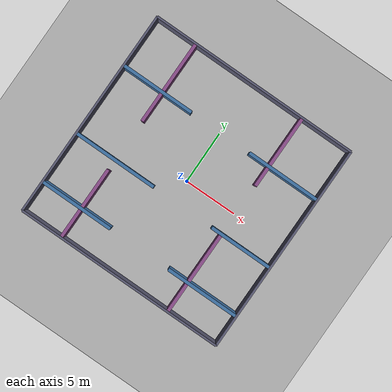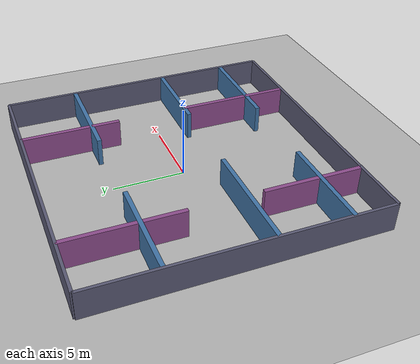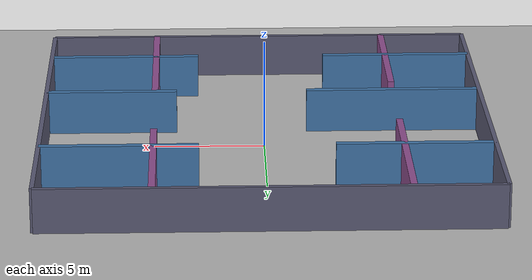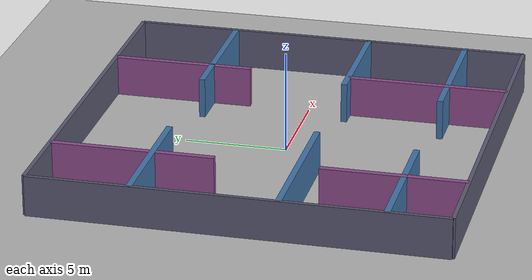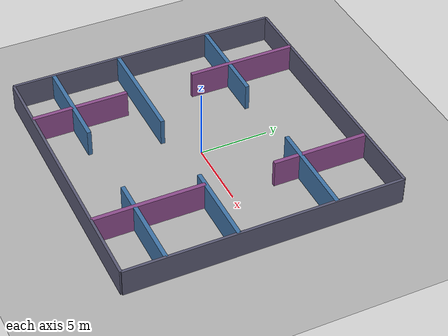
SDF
<?xml version="1.0" ?>
<sdf version="1.6">
  <world name="pursuit_world">
    <gui fullscreen="0">
      <camera name="user_camera">
        <pose>0 0 45 0 1.5707 1.5707</pose>
        <view_controller>orbit</view_controller>
        <projection_type>orthographic</projection_type>
      </camera>
    </gui>

    <physics name="1ms" type="ignored">
      <max_step_size>0.001</max_step_size>
      <real_time_factor>5.0</real_time_factor>
      <real_time_update_rate>1000</real_time_update_rate>
    </physics>

    <plugin filename="gz-sim-physics-system"           name="gz::sim::systems::Physics"/>
    <plugin filename="gz-sim-user-commands-system"     name="gz::sim::systems::UserCommands"/>
    <plugin filename="gz-sim-scene-broadcaster-system" name="gz::sim::systems::SceneBroadcaster"/>
    <plugin filename="gz-sim-contact-system"           name="gz::sim::systems::Contact"/>
    <plugin filename="gz-sim-sensors-system"           name="gz::sim::systems::Sensors">
      <render_engine>ogre2</render_engine>
    </plugin>

    <light type="directional" name="sun">
      <cast_shadows>true</cast_shadows>
      <pose>0 0 10 0 0 0</pose>
      <diffuse>0.8 0.8 0.8 1</diffuse>
      <specular>0.2 0.2 0.2 1</specular>
      <attenuation>
        <range>1000</range>
        <constant>0.9</constant>
        <linear>0.01</linear>
        <quadratic>0.001</quadratic>
      </attenuation>
      <direction>-0.5 0.1 -0.9</direction>
    </light>

    <!-- Ground plane -->
    <model name="ground_plane">
      <static>true</static>
      <link name="link">
        <collision name="collision">
          <geometry><plane><normal>0 0 1</normal><size>100 100</size></plane></geometry>
        </collision>
        <visual name="visual">
          <geometry><plane><normal>0 0 1</normal><size>100 100</size></plane></geometry>
          <material>
            <ambient>0.7 0.7 0.7 1</ambient>
            <diffuse>0.7 0.7 0.7 1</diffuse>
            <specular>0.7 0.7 0.7 1</specular>
          </material>
        </visual>
      </link>
    </model>

    <!-- Bounding walls: arena is 20x20, walls at x=±10, y=±10 -->
    <model name="bounding_walls">
      <static>true</static>

      <!-- north wall: y=10, x=-10..10, length=20 -->
      <link name="north_wall">
        <pose>0 10 1 0 0 0</pose>
        <collision name="collision"><geometry><box><size>20.0 0.2 2.0</size></box></geometry></collision>
        <visual name="visual">
          <geometry><box><size>20.0 0.2 2.0</size></box></geometry>
          <material><ambient>0.35 0.35 0.45 1</ambient><diffuse>0.35 0.35 0.45 1</diffuse></material>
        </visual>
      </link>

      <!-- south wall: y=-10, x=-10..10, length=20 -->
      <link name="south_wall">
        <pose>0 -10 1 0 0 0</pose>
        <collision name="collision"><geometry><box><size>20.0 0.2 2.0</size></box></geometry></collision>
        <visual name="visual">
          <geometry><box><size>20.0 0.2 2.0</size></box></geometry>
          <material><ambient>0.35 0.35 0.45 1</ambient><diffuse>0.35 0.35 0.45 1</diffuse></material>
        </visual>
      </link>

      <!-- east wall: x=10, y=-10..10, length=20 -->
      <link name="east_wall">
        <pose>10 0 1 0 0 0</pose>
        <collision name="collision"><geometry><box><size>0.2 20.0 2.0</size></box></geometry></collision>
        <visual name="visual">
          <geometry><box><size>0.2 20.0 2.0</size></box></geometry>
          <material><ambient>0.35 0.35 0.45 1</ambient><diffuse>0.35 0.35 0.45 1</diffuse></material>
        </visual>
      </link>

      <!-- west wall: x=-10, y=-10..10, length=20 -->
      <link name="west_wall">
        <pose>-10 0 1 0 0 0</pose>
        <collision name="collision"><geometry><box><size>0.2 20.0 2.0</size></box></geometry></collision>
        <visual name="visual">
          <geometry><box><size>0.2 20.0 2.0</size></box></geometry>
          <material><ambient>0.35 0.35 0.45 1</ambient><diffuse>0.35 0.35 0.45 1</diffuse></material>
        </visual>
      </link>
    </model>

    <model name="maze_walls">
      <static>true</static>

      <!-- ROW A west: x=-10 to -3, length=7, center=(-6.5, 5) -->
      <link name="rowA_west">
        <pose>-6.5 5 1 0 0 0</pose>
        <collision name="collision"><geometry><box><size>7.0 0.3 2.0</size></box></geometry></collision>
        <visual name="visual">
          <geometry><box><size>7.0 0.3 2.0</size></box></geometry>
          <material><ambient>0.25 0.45 0.65 1</ambient><diffuse>0.25 0.45 0.65 1</diffuse></material>
        </visual>
      </link>

      <!-- ROW A east: x=3 to 10, length=7, center=(6.5, 5) -->
      <link name="rowA_east">
        <pose>6.5 5 1 0 0 0</pose>
        <collision name="collision"><geometry><box><size>7.0 0.3 2.0</size></box></geometry></collision>
        <visual name="visual">
          <geometry><box><size>7.0 0.3 2.0</size></box></geometry>
          <material><ambient>0.25 0.45 0.65 1</ambient><diffuse>0.25 0.45 0.65 1</diffuse></material>
        </visual>
      </link>

      <!-- ROW B west: x=-10 to -2, length=8, center=(-6, -2) -->
      <link name="rowB_west">
        <pose>-6 -2 1 0 0 0</pose>
        <collision name="collision"><geometry><box><size>8.0 0.3 2.0</size></box></geometry></collision>
        <visual name="visual">
          <geometry><box><size>8.0 0.3 2.0</size></box></geometry>
          <material><ambient>0.25 0.45 0.65 1</ambient><diffuse>0.25 0.45 0.65 1</diffuse></material>
        </visual>
      </link>

      <!-- ROW B east: x=4 to 10, length=6, center=(7, -2) -->
      <link name="rowB_east">
        <pose>7 -2 1 0 0 0</pose>
        <collision name="collision"><geometry><box><size>6.0 0.3 2.0</size></box></geometry></collision>
        <visual name="visual">
          <geometry><box><size>6.0 0.3 2.0</size></box></geometry>
          <material><ambient>0.25 0.45 0.65 1</ambient><diffuse>0.25 0.45 0.65 1</diffuse></material>
        </visual>
      </link>

      <!-- ROW C west: x=-10 to -3, length=7, center=(-6.5, -7) -->
      <link name="rowC_west">
        <pose>-6.5 -7 1 0 0 0</pose>
        <collision name="collision"><geometry><box><size>7.0 0.3 2.0</size></box></geometry></collision>
        <visual name="visual">
          <geometry><box><size>7.0 0.3 2.0</size></box></geometry>
          <material><ambient>0.25 0.45 0.65 1</ambient><diffuse>0.25 0.45 0.65 1</diffuse></material>
        </visual>
      </link>

      <!-- ROW C east: x=3 to 10, length=7, center=(6.5, -7) -->
      <link name="rowC_east">
        <pose>6.5 -7 1 0 0 0</pose>
        <collision name="collision"><geometry><box><size>7.0 0.3 2.0</size></box></geometry></collision>
        <visual name="visual">
          <geometry><box><size>7.0 0.3 2.0</size></box></geometry>
          <material><ambient>0.25 0.45 0.65 1</ambient><diffuse>0.25 0.45 0.65 1</diffuse></material>
        </visual>
      </link>

      <!-- COL A north: y=2 to 10, length=8, center=(-6, 6) -->
      <link name="colA_north">
        <pose>-6 6 1 0 0 0</pose>
        <collision name="collision"><geometry><box><size>0.3 8.0 2.0</size></box></geometry></collision>
        <visual name="visual">
          <geometry><box><size>0.3 8.0 2.0</size></box></geometry>
          <material><ambient>0.55 0.30 0.55 1</ambient><diffuse>0.55 0.30 0.55 1</diffuse></material>
        </visual>
      </link>

      <!-- COL A south: y=-10 to -3, length=7, center=(-6, -6.5) -->
      <link name="colA_south">
        <pose>-6 -6.5 1 0 0 0</pose>
        <collision name="collision"><geometry><box><size>0.3 7.0 2.0</size></box></geometry></collision>
        <visual name="visual">
          <geometry><box><size>0.3 7.0 2.0</size></box></geometry>
          <material><ambient>0.55 0.30 0.55 1</ambient><diffuse>0.55 0.30 0.55 1</diffuse></material>
        </visual>
      </link>

      <!-- COL B north: y=3 to 10, length=7, center=(5, 6.5) -->
      <link name="colB_north">
        <pose>5 6.5 1 0 0 0</pose>
        <collision name="collision"><geometry><box><size>0.3 7.0 2.0</size></box></geometry></collision>
        <visual name="visual">
          <geometry><box><size>0.3 7.0 2.0</size></box></geometry>
          <material><ambient>0.55 0.30 0.55 1</ambient><diffuse>0.55 0.30 0.55 1</diffuse></material>
        </visual>
      </link>

      <!-- COL B south: y=-10 to -2, length=8, center=(5, -6) -->
      <link name="colB_south">
        <pose>5 -6 1 0 0 0</pose>
        <collision name="collision"><geometry><box><size>0.3 8.0 2.0</size></box></geometry></collision>
        <visual name="visual">
          <geometry><box><size>0.3 8.0 2.0</size></box></geometry>
          <material><ambient>0.55 0.30 0.55 1</ambient><diffuse>0.55 0.30 0.55 1</diffuse></material>
        </visual>
      </link>

    </model>

  </world>
</sdf>
